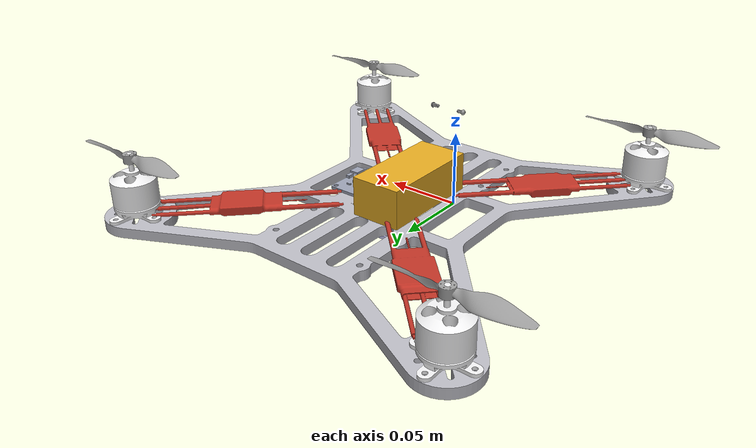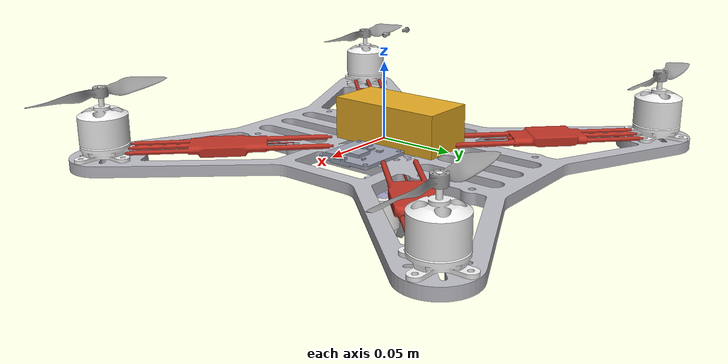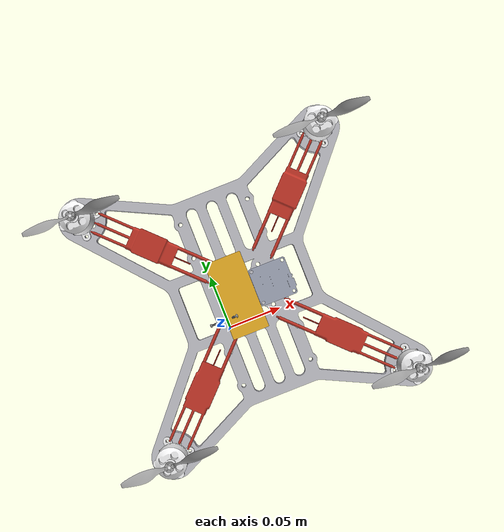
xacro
<?xml version="1.0" ?>
<robot name="drone" xmlns:xacro="http://www.ros.org/wiki/xacro">

<xacro:include filename="$(find drone_description)/urdf/materials.xacro" />
<xacro:include filename="$(find drone_description)/urdf/drone.trans" />
<xacro:include filename="$(find drone_description)/urdf/drone.gazebo" />
<link name="base_link">
  <inertial>
    <origin xyz="0.02552976905388366 0.025379853231116512 0.003333333333333335" rpy="0 0 0"/>
    <mass value="1.14741875786658"/>
    <inertia ixx="0.007396" iyy="0.005834" izz="0.013222" ixy="0.0" iyz="0.0" ixz="-0.0"/>
  </inertial>
  <visual>
    <origin xyz="0 0 0" rpy="0 0 0"/>
    <geometry>
      <mesh filename="package://drone_description/meshes/base_link.stl" scale="0.001 0.001 0.001"/>
    </geometry>
    <material name="carbon_fiber_plain"/>
  </visual>
  <collision>
    <origin xyz="0 0 0" rpy="0 0 0"/>
    <geometry>
      <mesh filename="package://drone_description/meshes/base_link.stl" scale="0.001 0.001 0.001"/>
    </geometry>
  </collision>
</link>

<link name="motor_1_1">
  <inertial>
    <origin xyz="-1.05634860414483e-07 4.084613179911045e-07 0.014004576853888132" rpy="0 0 0"/>
    <mass value="0.11531015449050859"/>
    <inertia ixx="1.2e-05" iyy="1.2e-05" izz="1.1e-05" ixy="0.0" iyz="0.0" ixz="-0.0"/>
  </inertial>
  <visual>
    <origin xyz="0.092323 -0.14323 -0.006667" rpy="0 0 0"/>
    <geometry>
      <mesh filename="package://drone_description/meshes/motor_1_1.stl" scale="0.001 0.001 0.001"/>
    </geometry>
    <material name="aluminum_polished"/>
  </visual>
  <collision>
    <origin xyz="0.092323 -0.14323 -0.006667" rpy="0 0 0"/>
    <geometry>
      <mesh filename="package://drone_description/meshes/motor_1_1.stl" scale="0.001 0.001 0.001"/>
    </geometry>
  </collision>
</link>

<link name="motor_2_1">
  <inertial>
    <origin xyz="-8.452393447655471e-07 4.084613179911045e-07 0.014004576853888138" rpy="0 0 0"/>
    <mass value="0.11531015449050859"/>
    <inertia ixx="1.2e-05" iyy="1.2e-05" izz="1.1e-05" ixy="0.0" iyz="0.0" ixz="-0.0"/>
  </inertial>
  <visual>
    <origin xyz="-0.14338 -0.14323 -0.006667" rpy="0 0 0"/>
    <geometry>
      <mesh filename="package://drone_description/meshes/motor_2_1.stl" scale="0.001 0.001 0.001"/>
    </geometry>
    <material name="aluminum_polished"/>
  </visual>
  <collision>
    <origin xyz="-0.14338 -0.14323 -0.006667" rpy="0 0 0"/>
    <geometry>
      <mesh filename="package://drone_description/meshes/motor_2_1.stl" scale="0.001 0.001 0.001"/>
    </geometry>
  </collision>
</link>

<link name="motor_3_1">
  <inertial>
    <origin xyz="-1.0563486055326088e-07 1.4806580227177957e-07 0.014004576853888138" rpy="0 0 0"/>
    <mass value="0.11531015449050859"/>
    <inertia ixx="1.2e-05" iyy="1.2e-05" izz="1.1e-05" ixy="0.0" iyz="0.0" ixz="-0.0"/>
  </inertial>
  <visual>
    <origin xyz="0.092323 0.092472 -0.006667" rpy="0 0 0"/>
    <geometry>
      <mesh filename="package://drone_description/meshes/motor_3_1.stl" scale="0.001 0.001 0.001"/>
    </geometry>
    <material name="aluminum_polished"/>
  </visual>
  <collision>
    <origin xyz="0.092323 0.092472 -0.006667" rpy="0 0 0"/>
    <geometry>
      <mesh filename="package://drone_description/meshes/motor_3_1.stl" scale="0.001 0.001 0.001"/>
    </geometry>
  </collision>
</link>

<link name="motor_4_1">
  <inertial>
    <origin xyz="-8.452393446267692e-07 1.480658022301462e-07 0.014004576853888138" rpy="0 0 0"/>
    <mass value="0.11531015449050859"/>
    <inertia ixx="1.2e-05" iyy="1.2e-05" izz="1.1e-05" ixy="0.0" iyz="0.0" ixz="-0.0"/>
  </inertial>
  <visual>
    <origin xyz="-0.14338 0.092472 -0.006667" rpy="0 0 0"/>
    <geometry>
      <mesh filename="package://drone_description/meshes/motor_4_1.stl" scale="0.001 0.001 0.001"/>
    </geometry>
    <material name="aluminum_polished"/>
  </visual>
  <collision>
    <origin xyz="-0.14338 0.092472 -0.006667" rpy="0 0 0"/>
    <geometry>
      <mesh filename="package://drone_description/meshes/motor_4_1.stl" scale="0.001 0.001 0.001"/>
    </geometry>
  </collision>
</link>

<link name="Propeller_1_1">
  <inertial>
    <origin xyz="4.7079369354385836e-07 -1.8424658171367625e-07 -0.0034432864371606517" rpy="0 0 0"/>
    <mass value="0.007622707457898071"/>
    <inertia ixx="0.0" iyy="3e-06" izz="3e-06" ixy="0.0" iyz="-0.0" ixz="-0.0"/>
  </inertial>
  <visual>
    <origin xyz="0.092323 -0.14323 -0.047772" rpy="0 0 0"/>
    <geometry>
      <mesh filename="package://drone_description/meshes/Propeller_1_1.stl" scale="0.001 0.001 0.001"/>
    </geometry>
    <material name="steel_satin"/>
  </visual>
  <collision>
    <origin xyz="0.092323 -0.14323 -0.047772" rpy="0 0 0"/>
    <geometry>
      <mesh filename="package://drone_description/meshes/Propeller_1_1.stl" scale="0.001 0.001 0.001"/>
    </geometry>
  </collision>
</link>

<link name="Propeller_2_1">
  <inertial>
    <origin xyz="-2.688107907933279e-07 -1.8424658171367625e-07 -0.0034439531038273005" rpy="0 0 0"/>
    <mass value="0.007622707457898071"/>
    <inertia ixx="0.0" iyy="3e-06" izz="3e-06" ixy="0.0" iyz="-0.0" ixz="-0.0"/>
  </inertial>
  <visual>
    <origin xyz="-0.14338 -0.14323 -0.047772" rpy="0 0 0"/>
    <geometry>
      <mesh filename="package://drone_description/meshes/Propeller_2_1.stl" scale="0.001 0.001 0.001"/>
    </geometry>
    <material name="steel_satin"/>
  </visual>
  <collision>
    <origin xyz="-0.14338 -0.14323 -0.047772" rpy="0 0 0"/>
    <geometry>
      <mesh filename="package://drone_description/meshes/Propeller_2_1.stl" scale="0.001 0.001 0.001"/>
    </geometry>
  </collision>
</link>

<link name="Propeller_3_1">
  <inertial>
    <origin xyz="4.707936933912027e-07 -4.446420974607568e-07 -0.003468919770493968" rpy="0 0 0"/>
    <mass value="0.007622707457898071"/>
    <inertia ixx="0.0" iyy="3e-06" izz="3e-06" ixy="0.0" iyz="-0.0" ixz="-0.0"/>
  </inertial>
  <visual>
    <origin xyz="0.092323 0.092472 -0.047772" rpy="0 0 0"/>
    <geometry>
      <mesh filename="package://drone_description/meshes/Propeller_3_1.stl" scale="0.001 0.001 0.001"/>
    </geometry>
    <material name="steel_satin"/>
  </visual>
  <collision>
    <origin xyz="0.092323 0.092472 -0.047772" rpy="0 0 0"/>
    <geometry>
      <mesh filename="package://drone_description/meshes/Propeller_3_1.stl" scale="0.001 0.001 0.001"/>
    </geometry>
  </collision>
</link>

<link name="Propeller_4_1">
  <inertial>
    <origin xyz="-2.688107906823056e-07 -4.4464209750239014e-07 -0.0034439531038273005" rpy="0 0 0"/>
    <mass value="0.007622707457898071"/>
    <inertia ixx="0.0" iyy="3e-06" izz="3e-06" ixy="0.0" iyz="-0.0" ixz="-0.0"/>
  </inertial>
  <visual>
    <origin xyz="-0.14338 0.092472 -0.047772" rpy="0 0 0"/>
    <geometry>
      <mesh filename="package://drone_description/meshes/Propeller_4_1.stl" scale="0.001 0.001 0.001"/>
    </geometry>
    <material name="steel_satin"/>
  </visual>
  <collision>
    <origin xyz="-0.14338 0.092472 -0.047772" rpy="0 0 0"/>
    <geometry>
      <mesh filename="package://drone_description/meshes/Propeller_4_1.stl" scale="0.001 0.001 0.001"/>
    </geometry>
  </collision>
</link>

<link name="ESC_1_1">
  <inertial>
    <origin xyz="-0.06569863536228615 0.07064061510191329 0.0027050288207275527" rpy="0 0 0"/>
    <mass value="0.0072654181268378614"/>
    <inertia ixx="2e-06" iyy="2e-06" izz="4e-06" ixy="1e-06" iyz="-0.0" ixz="0.0"/>
  </inertial>
  <visual>
    <origin xyz="-0.025529 -0.025379 -0.006667" rpy="0 0 0"/>
    <geometry>
      <mesh filename="package://drone_description/meshes/ESC_1_1.stl" scale="0.001 0.001 0.001"/>
    </geometry>
    <material name="plastic_matte_red"/>
  </visual>
  <collision>
    <origin xyz="-0.025529 -0.025379 -0.006667" rpy="0 0 0"/>
    <geometry>
      <mesh filename="package://drone_description/meshes/ESC_1_1.stl" scale="0.001 0.001 0.001"/>
    </geometry>
  </collision>
</link>

<link name="ESC_2_1">
  <inertial>
    <origin xyz="-0.06881585846767957 -0.06875847886274937 0.003136304512605788" rpy="0 0 0"/>
    <mass value="0.0072654181268378614"/>
    <inertia ixx="2e-06" iyy="2e-06" izz="4e-06" ixy="-1e-06" iyz="-0.0" ixz="-0.0"/>
  </inertial>
  <visual>
    <origin xyz="-0.025529 -0.025379 -0.006667" rpy="0 0 0"/>
    <geometry>
      <mesh filename="package://drone_description/meshes/ESC_2_1.stl" scale="0.001 0.001 0.001"/>
    </geometry>
    <material name="plastic_matte_red"/>
  </visual>
  <collision>
    <origin xyz="-0.025529 -0.025379 -0.006667" rpy="0 0 0"/>
    <geometry>
      <mesh filename="package://drone_description/meshes/ESC_2_1.stl" scale="0.001 0.001 0.001"/>
    </geometry>
  </collision>
</link>

<link name="ESC_3_1">
  <inertial>
    <origin xyz="0.07064053091781529 0.07069791052274577 0.0027050288207275197" rpy="0 0 0"/>
    <mass value="0.0072654181268378614"/>
    <inertia ixx="2e-06" iyy="2e-06" izz="4e-06" ixy="-1e-06" iyz="-0.0" ixz="-0.0"/>
  </inertial>
  <visual>
    <origin xyz="-0.025529 -0.025379 -0.006667" rpy="0 0 0"/>
    <geometry>
      <mesh filename="package://drone_description/meshes/ESC_3_1.stl" scale="0.001 0.001 0.001"/>
    </geometry>
    <material name="plastic_matte_red"/>
  </visual>
  <collision>
    <origin xyz="-0.025529 -0.025379 -0.006667" rpy="0 0 0"/>
    <geometry>
      <mesh filename="package://drone_description/meshes/ESC_3_1.stl" scale="0.001 0.001 0.001"/>
    </geometry>
  </collision>
</link>

<link name="ESC_4_1">
  <inertial>
    <origin xyz="0.06875775402320906 -0.06881577428358152 0.0031363045126057984" rpy="0 0 0"/>
    <mass value="0.0072654181268378614"/>
    <inertia ixx="2e-06" iyy="2e-06" izz="4e-06" ixy="1e-06" iyz="-0.0" ixz="0.0"/>
  </inertial>
  <visual>
    <origin xyz="-0.025529 -0.025379 -0.006667" rpy="0 0 0"/>
    <geometry>
      <mesh filename="package://drone_description/meshes/ESC_4_1.stl" scale="0.001 0.001 0.001"/>
    </geometry>
    <material name="plastic_matte_red"/>
  </visual>
  <collision>
    <origin xyz="-0.025529 -0.025379 -0.006667" rpy="0 0 0"/>
    <geometry>
      <mesh filename="package://drone_description/meshes/ESC_4_1.stl" scale="0.001 0.001 0.001"/>
    </geometry>
  </collision>
</link>

<link name="Servo_1_1">
  <inertial>
    <origin xyz="-4.3326075818694854e-07 -0.00041859451057008404 -0.012596247456464734" rpy="0 0 0"/>
    <mass value="0.009732035580497731"/>
    <inertia ixx="1e-06" iyy="1e-06" izz="1e-06" ixy="0.0" iyz="-0.0" ixz="-0.0"/>
  </inertial>
  <visual>
    <origin xyz="-0.025529 -0.025379 -0.0" rpy="0 0 0"/>
    <geometry>
      <mesh filename="package://drone_description/meshes/Servo_1_1.stl" scale="0.001 0.001 0.001"/>
    </geometry>
    <material name="opaque210210255"/>
  </visual>
  <collision>
    <origin xyz="-0.025529 -0.025379 -0.0" rpy="0 0 0"/>
    <geometry>
      <mesh filename="package://drone_description/meshes/Servo_1_1.stl" scale="0.001 0.001 0.001"/>
    </geometry>
  </collision>
</link>

<link name="cam_stand_1">
  <inertial>
    <origin xyz="-4.045118443124496e-07 -3.20327721185093e-07 -0.004986323524825264" rpy="0 0 0"/>
    <mass value="0.004333286523560802"/>
    <inertia ixx="0.0" iyy="0.0" izz="0.0" ixy="0.0" iyz="-0.0" ixz="-0.0"/>
  </inertial>
  <visual>
    <origin xyz="-0.025529 -0.020154 0.03015" rpy="0 0 0"/>
    <geometry>
      <mesh filename="package://drone_description/meshes/cam_stand_1.stl" scale="0.001 0.001 0.001"/>
    </geometry>
    <material name="abs_white"/>
  </visual>
  <collision>
    <origin xyz="-0.025529 -0.020154 0.03015" rpy="0 0 0"/>
    <geometry>
      <mesh filename="package://drone_description/meshes/cam_stand_1.stl" scale="0.001 0.001 0.001"/>
    </geometry>
  </collision>
</link>

<link name="FPV_Camera_1">
  <inertial>
    <origin xyz="-0.01080993900425363 -0.00010405058179329893 -0.00545176143951185" rpy="0 0 0"/>
    <mass value="0.05103771613351289"/>
    <inertia ixx="7e-06" iyy="8e-06" izz="3e-06" ixy="-0.0" iyz="0.0" ixz="-0.0"/>
  </inertial>
  <visual>
    <origin xyz="-0.025529 -0.020154 0.0409" rpy="0 0 0"/>
    <geometry>
      <mesh filename="package://drone_description/meshes/FPV_Camera_1.stl" scale="0.001 0.001 0.001"/>
    </geometry>
    <material name="steel_satin"/>
  </visual>
  <collision>
    <origin xyz="-0.025529 -0.020154 0.0409" rpy="0 0 0"/>
    <geometry>
      <mesh filename="package://drone_description/meshes/FPV_Camera_1.stl" scale="0.001 0.001 0.001"/>
    </geometry>
  </collision>
</link>

<link name="LiPo_v1_1">
  <inertial>
    <origin xyz="3.1410497040862406e-07 -0.00174970226039552 0.012999666666666673" rpy="0 0 0"/>
    <mass value="0.09101664000000001"/>
    <inertia ixx="4.4e-05" iyy="1.4e-05" izz="4.8e-05" ixy="0.0" iyz="0.0" ixz="-0.0"/>
  </inertial>
  <visual>
    <origin xyz="-0.017043 -0.027264 -0.006667" rpy="0 0 0"/>
    <geometry>
      <mesh filename="package://drone_description/meshes/LiPo_v1_1.stl" scale="0.001 0.001 0.001"/>
    </geometry>
    <material name="paint_metallic_yellow"/>
  </visual>
  <collision>
    <origin xyz="-0.017043 -0.027264 -0.006667" rpy="0 0 0"/>
    <geometry>
      <mesh filename="package://drone_description/meshes/LiPo_v1_1.stl" scale="0.001 0.001 0.001"/>
    </geometry>
  </collision>
</link>

<link name="MATEK_F405_1">
  <inertial>
    <origin xyz="0.028786371595383307 -0.0003009658034443981 0.0009694174050894414" rpy="0 0 0"/>
    <mass value="0.027601673601549786"/>
    <inertia ixx="2e-06" iyy="3e-06" izz="5e-06" ixy="0.0" iyz="0.0" ixz="-0.0"/>
  </inertial>
  <visual>
    <origin xyz="-0.025529 -0.025379 -0.006667" rpy="0 0 0"/>
    <geometry>
      <mesh filename="package://drone_description/meshes/MATEK_F405_1.stl" scale="0.001 0.001 0.001"/>
    </geometry>
    <material name="opaque158164182"/>
  </visual>
  <collision>
    <origin xyz="-0.025529 -0.025379 -0.006667" rpy="0 0 0"/>
    <geometry>
      <mesh filename="package://drone_description/meshes/MATEK_F405_1.stl" scale="0.001 0.001 0.001"/>
    </geometry>
  </collision>
</link>

<joint name="Rigid1" type="fixed">
  <origin xyz="-0.092323 0.14323 0.006667" rpy="0 0 0"/>
  <parent link="base_link"/>
  <child link="motor_1_1"/>
</joint>

<joint name="Rigid2" type="fixed">
  <origin xyz="0.14338 0.14323 0.006667" rpy="0 0 0"/>
  <parent link="base_link"/>
  <child link="motor_2_1"/>
</joint>

<joint name="Rigid3" type="fixed">
  <origin xyz="-0.092323 -0.092472 0.006667" rpy="0 0 0"/>
  <parent link="base_link"/>
  <child link="motor_3_1"/>
</joint>

<joint name="Rigid4" type="fixed">
  <origin xyz="0.14338 -0.092472 0.006667" rpy="0 0 0"/>
  <parent link="base_link"/>
  <child link="motor_4_1"/>
</joint>

<joint name="Rev5" type="continuous">
  <origin xyz="0.0 0.0 0.041105" rpy="0 0 0"/>
  <parent link="motor_1_1"/>
  <child link="Propeller_1_1"/>
  <axis xyz="-0.0 -0.0 1.0"/>
</joint>

<joint name="Rev6" type="continuous">
  <origin xyz="0.0 0.0 0.041105" rpy="0 0 0"/>
  <parent link="motor_2_1"/>
  <child link="Propeller_2_1"/>
  <axis xyz="0.0 0.0 1.0"/>
</joint>

<joint name="Rev7" type="continuous">
  <origin xyz="0.0 0.0 0.041105" rpy="0 0 0"/>
  <parent link="motor_3_1"/>
  <child link="Propeller_3_1"/>
  <axis xyz="0.0 0.0 1.0"/>
</joint>

<joint name="Rev8" type="continuous">
  <origin xyz="0.0 0.0 0.041105" rpy="0 0 0"/>
  <parent link="motor_4_1"/>
  <child link="Propeller_4_1"/>
  <axis xyz="0.0 0.0 1.0"/>
</joint>

<joint name="Rigid9" type="fixed">
  <origin xyz="0.025529 0.025379 0.006667" rpy="0 0 0"/>
  <parent link="base_link"/>
  <child link="ESC_1_1"/>
</joint>

<joint name="Rigid10" type="fixed">
  <origin xyz="0.025529 0.025379 0.006667" rpy="0 0 0"/>
  <parent link="base_link"/>
  <child link="ESC_2_1"/>
</joint>

<joint name="Rigid11" type="fixed">
  <origin xyz="0.025529 0.025379 0.006667" rpy="0 0 0"/>
  <parent link="base_link"/>
  <child link="ESC_3_1"/>
</joint>

<joint name="Rigid12" type="fixed">
  <origin xyz="0.025529 0.025379 0.006667" rpy="0 0 0"/>
  <parent link="base_link"/>
  <child link="ESC_4_1"/>
</joint>

<joint name="Rigid13" type="fixed">
  <origin xyz="0.025529 0.025379 0.0" rpy="0 0 0"/>
  <parent link="base_link"/>
  <child link="Servo_1_1"/>
</joint>

<joint name="Rev14" type="continuous">
  <origin xyz="0.0 -0.005225 -0.03015" rpy="0 0 0"/>
  <parent link="Servo_1_1"/>
  <child link="cam_stand_1"/>
  <axis xyz="-0.0 0.0 -1.0"/>
</joint>

<joint name="Rev15" type="revolute">
  <origin xyz="0.0 0.0 -0.01075" rpy="0 0 0"/>
  <parent link="cam_stand_1"/>
  <child link="FPV_Camera_1"/>
  <axis xyz="0.0 1.0 0.0"/>
  <limit upper="0.610865" lower="-2.617994" effort="100" velocity="100"/>
</joint>

<joint name="Rigid16" type="fixed">
  <origin xyz="0.017043 0.027264 0.006667" rpy="0 0 0"/>
  <parent link="base_link"/>
  <child link="LiPo_v1_1"/>
</joint>

<joint name="Rigid17" type="fixed">
  <origin xyz="0.025529 0.025379 0.006667" rpy="0 0 0"/>
  <parent link="base_link"/>
  <child link="MATEK_F405_1"/>
</joint>

</robot>

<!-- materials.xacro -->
<robot name="drone" xmlns:xacro="http://www.ros.org/wiki/xacro" >

<material name="silver_default">
  <color rgba="0.700 0.700 0.700 1.000"/>
</material>
<material name="aluminum_polished">
  <color rgba="0.9607843137254902 0.9607843137254902 0.9647058823529412 1.0"/>
</material>
<material name="steel_satin">
  <color rgba="0.6274509803921569 0.6274509803921569 0.6274509803921569 1.0"/>
</material>
<material name="plastic_matte_red">
  <color rgba="0.7686274509803922 0.20784313725490197 0.15294117647058825 1.0"/>
</material>
<material name="opaque210210255">
  <color rgba="0.8235294117647058 0.8235294117647058 1.0 1.0"/>
</material>
<material name="abs_white">
  <color rgba="0.9647058823529412 0.9647058823529412 0.9529411764705882 1.0"/>
</material>
<material name="paint_metallic_yellow">
  <color rgba="0.9098039215686274 0.6784313725490196 0.13725490196078433 1.0"/>
</material>
<material name="opaque158164182">
  <color rgba="0.6196078431372549 0.6431372549019608 0.7137254901960784 1.0"/>
</material>

</robot>

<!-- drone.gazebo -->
<robot name="drone" xmlns:xacro="http://www.ros.org/wiki/xacro" >

<xacro:property name="body_color" value="Gazebo/Silver" />

<gazebo>
  <plugin name="control" filename="libgazebo_ros_control.so"/>
</gazebo>
<gazebo reference="base_link">
  <material>${body_color}</material>
  <mu1>0.2</mu1>
  <mu2>0.2</mu2>
  <selfCollide>true</selfCollide>
  <gravity>true</gravity>
</gazebo>

<gazebo reference="motor_1_1">
  <material>${body_color}</material>
  <mu1>0.2</mu1>
  <mu2>0.2</mu2>
  <selfCollide>true</selfCollide>
</gazebo>

<gazebo reference="motor_2_1">
  <material>${body_color}</material>
  <mu1>0.2</mu1>
  <mu2>0.2</mu2>
  <selfCollide>true</selfCollide>
</gazebo>

<gazebo reference="motor_3_1">
  <material>${body_color}</material>
  <mu1>0.2</mu1>
  <mu2>0.2</mu2>
  <selfCollide>true</selfCollide>
</gazebo>

<gazebo reference="motor_4_1">
  <material>${body_color}</material>
  <mu1>0.2</mu1>
  <mu2>0.2</mu2>
  <selfCollide>true</selfCollide>
</gazebo>

<gazebo reference="Propeller_1_1">
  <material>${body_color}</material>
  <mu1>0.2</mu1>
  <mu2>0.2</mu2>
  <selfCollide>true</selfCollide>
</gazebo>

<gazebo reference="Propeller_2_1">
  <material>${body_color}</material>
  <mu1>0.2</mu1>
  <mu2>0.2</mu2>
  <selfCollide>true</selfCollide>
</gazebo>

<gazebo reference="Propeller_3_1">
  <material>${body_color}</material>
  <mu1>0.2</mu1>
  <mu2>0.2</mu2>
  <selfCollide>true</selfCollide>
</gazebo>

<gazebo reference="Propeller_4_1">
  <material>${body_color}</material>
  <mu1>0.2</mu1>
  <mu2>0.2</mu2>
  <selfCollide>true</selfCollide>
</gazebo>

<gazebo reference="ESC_1_1">
  <material>${body_color}</material>
  <mu1>0.2</mu1>
  <mu2>0.2</mu2>
  <selfCollide>true</selfCollide>
</gazebo>

<gazebo reference="ESC_2_1">
  <material>${body_color}</material>
  <mu1>0.2</mu1>
  <mu2>0.2</mu2>
  <selfCollide>true</selfCollide>
</gazebo>

<gazebo reference="ESC_3_1">
  <material>${body_color}</material>
  <mu1>0.2</mu1>
  <mu2>0.2</mu2>
  <selfCollide>true</selfCollide>
</gazebo>

<gazebo reference="ESC_4_1">
  <material>${body_color}</material>
  <mu1>0.2</mu1>
  <mu2>0.2</mu2>
  <selfCollide>true</selfCollide>
</gazebo>

<gazebo reference="Servo_1_1">
  <material>${body_color}</material>
  <mu1>0.2</mu1>
  <mu2>0.2</mu2>
  <selfCollide>true</selfCollide>
</gazebo>

<gazebo reference="cam_stand_1">
  <material>${body_color}</material>
  <mu1>0.2</mu1>
  <mu2>0.2</mu2>
  <selfCollide>true</selfCollide>
</gazebo>

<gazebo reference="FPV_Camera_1">
  <material>${body_color}</material>
  <mu1>0.2</mu1>
  <mu2>0.2</mu2>
  <selfCollide>true</selfCollide>
</gazebo>

<gazebo reference="LiPo_v1_1">
  <material>${body_color}</material>
  <mu1>0.2</mu1>
  <mu2>0.2</mu2>
  <selfCollide>true</selfCollide>
</gazebo>

<gazebo reference="MATEK_F405_1">
  <material>${body_color}</material>
  <mu1>0.2</mu1>
  <mu2>0.2</mu2>
  <selfCollide>true</selfCollide>
</gazebo>

</robot>
